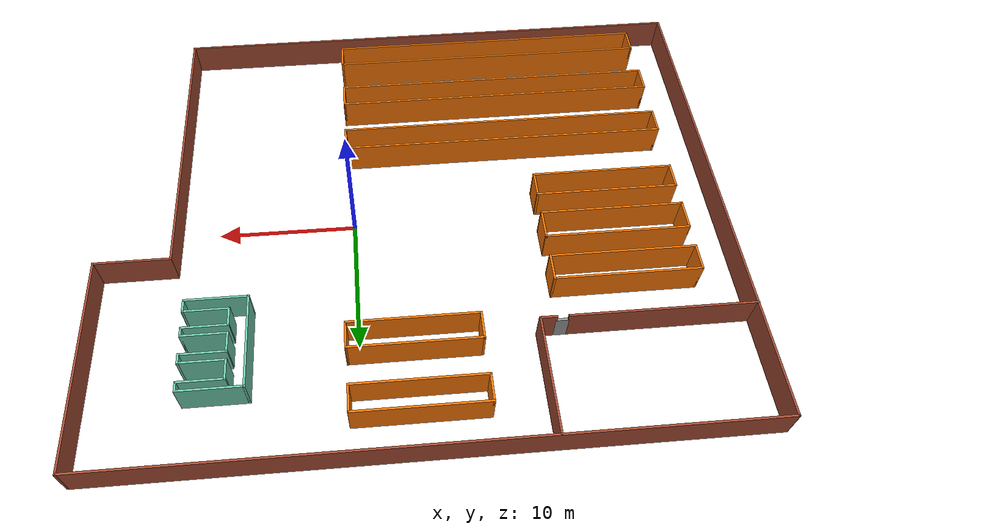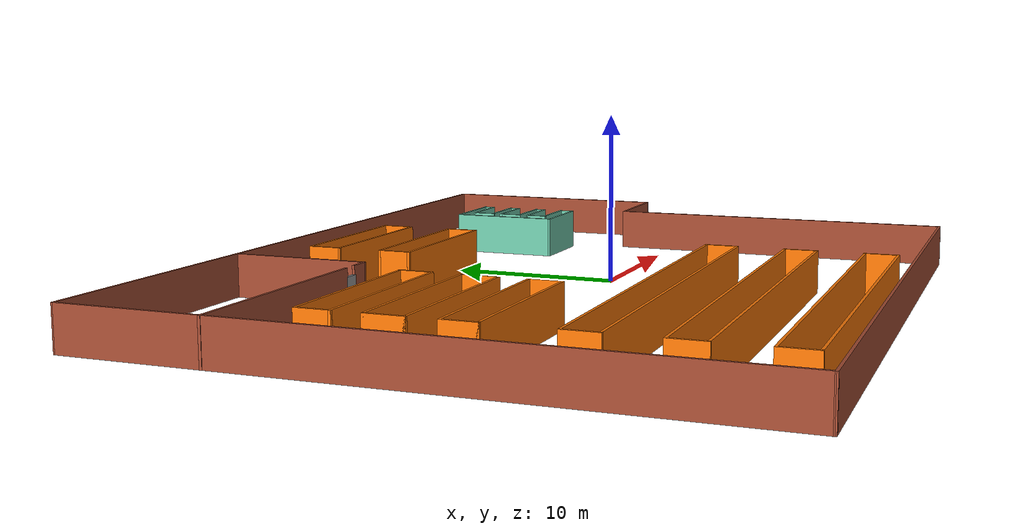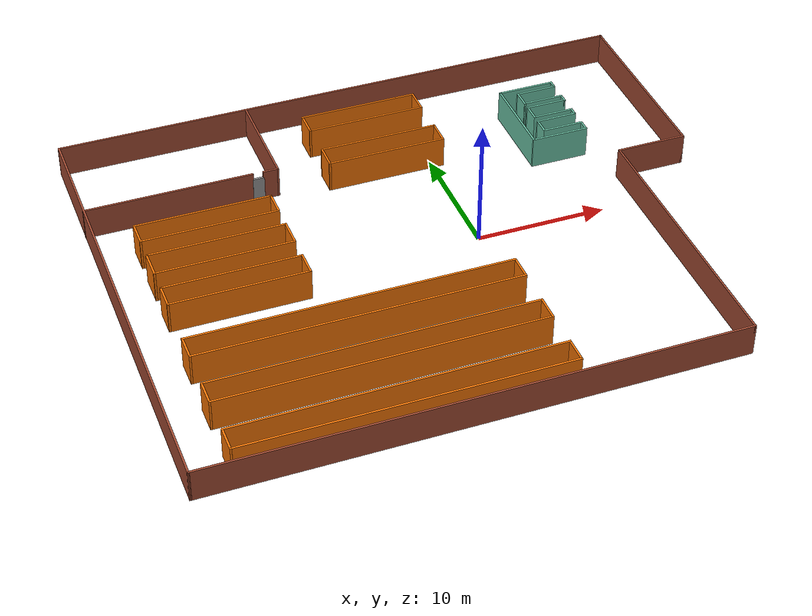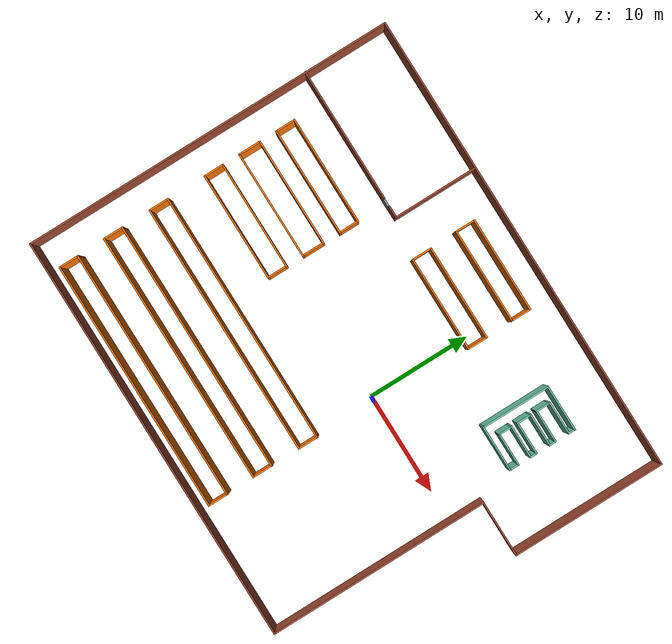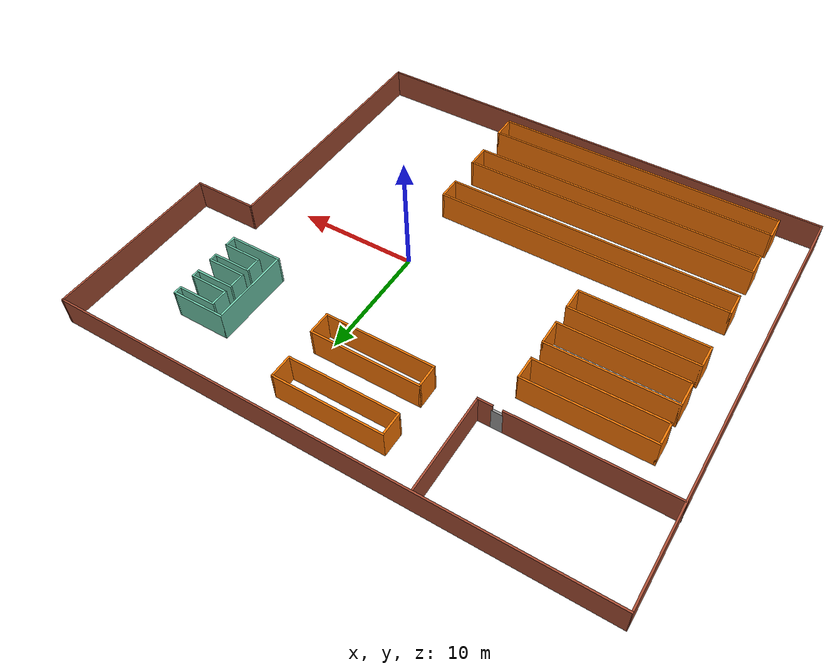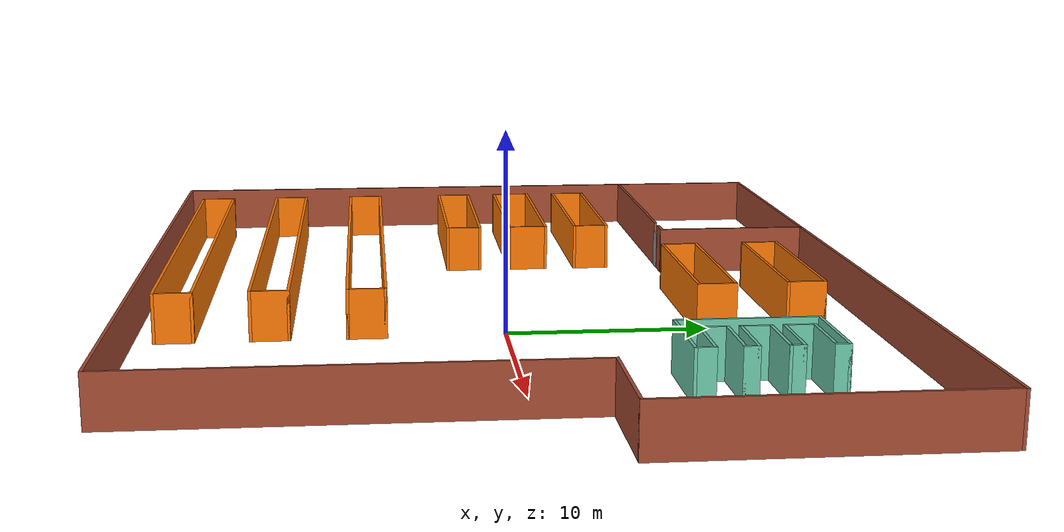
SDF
<?xml version='1.0'?>
<sdf version='1.6'>
  <model name='si_amr_factory'>
    <pose frame=''>-4.44254 0.10355 0 0 -0 0</pose>
    <link name='Door_0'>
      <collision name='Door_0_Collision'>
        <geometry>
          <box>
            <size>0.9 0.17 2</size>
          </box>
        </geometry>
        <pose frame=''>0 0 1 0 -0 0</pose>
      </collision>
      <visual name='Door_0_Visual'>
        <pose frame=''>0 0 1 0 -0 0</pose>
        <geometry>
          <box>
            <size>0.9 0.17 2</size>
          </box>
        </geometry>
        <material>
          <script>
            <uri>file://media/materials/scripts/gazebo.material</uri>
            <name>Gazebo/Grey</name>
          </script>
        </material>
      </visual>
      <pose frame=''>-9.24755 9.98097 0 0 -0 0</pose>
    </link>
    <link name='Wall_0'>
      <collision name='Wall_0_Collision'>
        <geometry>
          <box>
            <size>40 0.15 2.5</size>
          </box>
        </geometry>
        <pose frame=''>0 0 1.25 0 -0 0</pose>
      </collision>
      <visual name='Wall_0_Visual'>
        <pose frame=''>0 0 1.25 0 -0 0</pose>
        <geometry>
          <box>
            <size>40 0.15 2.5</size>
          </box>
        </geometry>
        <material>
          <script>
            <uri>file://media/materials/scripts/gazebo.material</uri>
            <name>Gazebo/Bricks</name>
          </script>
          <ambient>1 1 1 1</ambient>
        </material>
        <meta>
          <layer>0</layer>
        </meta>
      </visual>
      <pose frame=''>-2.6749 -18.1 0 0 -0 0</pose>
    </link>
    <link name='Wall_1'>
      <collision name='Wall_1_Collision'>
        <geometry>
          <box>
            <size>21.5 0.15 2.5</size>
          </box>
        </geometry>
        <pose frame=''>0 0 1.25 0 -0 0</pose>
      </collision>
      <visual name='Wall_1_Visual'>
        <pose frame=''>0 0 1.25 0 -0 0</pose>
        <geometry>
          <box>
            <size>21.5 0.15 2.5</size>
          </box>
        </geometry>
        <material>
          <script>
            <uri>file://media/materials/scripts/gazebo.material</uri>
            <name>Gazebo/Bricks</name>
          </script>
          <ambient>1 1 1 1</ambient>
        </material>
        <meta>
          <layer>0</layer>
        </meta>
      </visual>
      <pose frame=''>17.2501 -7.425 0 0 -0 1.5708</pose>
    </link>
    <link name='Wall_10'>
      <collision name='Wall_10_Collision'>
        <geometry>
          <box>
            <size>2 0.15 2.5</size>
          </box>
        </geometry>
        <pose frame=''>0 0 1.25 0 -0 0</pose>
      </collision>
      <visual name='Wall_10_Visual'>
        <pose frame=''>0 0 1.25 0 -0 0</pose>
        <geometry>
          <box>
            <size>2 0.15 2.5</size>
          </box>
        </geometry>
        <material>
          <script>
            <uri>file://media/materials/scripts/gazebo.material</uri>
            <name>Gazebo/Grey</name>
          </script>
          <ambient>0.996078 0.47451 0.0196078 1</ambient>
        </material>
        <meta>
          <layer>0</layer>
        </meta>
      </visual>
      <pose frame=''>-19.5227 -16.0937 0 0 -0 1.5708</pose>
    </link>
    <link name='Wall_12'>
      <collision name='Wall_12_Collision'>
        <geometry>
          <box>
            <size>2 0.15 2.5</size>
          </box>
        </geometry>
        <pose frame=''>0 0 1.25 0 -0 0</pose>
      </collision>
      <visual name='Wall_12_Visual'>
        <pose frame=''>0 0 1.25 0 -0 0</pose>
        <geometry>
          <box>
            <size>2 0.15 2.5</size>
          </box>
        </geometry>
        <material>
          <script>
            <uri>file://media/materials/scripts/gazebo.material</uri>
            <name>Gazebo/Grey</name>
          </script>
          <ambient>0.996078 0.47451 0.0196078 1</ambient>
        </material>
        <meta>
          <layer>0</layer>
        </meta>
      </visual>
      <pose frame=''>-19.575 -11.5221 0 0 -0 1.5708</pose>
    </link>
    <link name='Wall_13'>
      <collision name='Wall_13_Collision'>
        <geometry>
          <box>
            <size>24.5 0.15 2.5</size>
          </box>
        </geometry>
        <pose frame=''>0 0 1.25 0 -0 0</pose>
      </collision>
      <visual name='Wall_13_Visual'>
        <pose frame=''>0 0 1.25 0 -0 0</pose>
        <geometry>
          <box>
            <size>24.5 0.15 2.5</size>
          </box>
        </geometry>
        <material>
          <script>
            <uri>file://media/materials/scripts/gazebo.material</uri>
            <name>Gazebo/Grey</name>
          </script>
          <ambient>0.996078 0.47451 0.0196078 1</ambient>
        </material>
        <meta>
          <layer>0</layer>
        </meta>
      </visual>
      <pose frame=''>-7.39999 -10.5971 0 0 -0 0</pose>
    </link>
    <link name='Wall_14'>
      <collision name='Wall_14_Collision'>
        <geometry>
          <box>
            <size>2 0.15 2.5</size>
          </box>
        </geometry>
        <pose frame=''>0 0 1.25 0 -0 0</pose>
      </collision>
      <visual name='Wall_14_Visual'>
        <pose frame=''>0 0 1.25 0 -0 0</pose>
        <geometry>
          <box>
            <size>2 0.15 2.5</size>
          </box>
        </geometry>
        <material>
          <script>
            <uri>file://media/materials/scripts/gazebo.material</uri>
            <name>Gazebo/Grey</name>
          </script>
          <ambient>0.996078 0.47451 0.0196078 1</ambient>
        </material>
        <meta>
          <layer>0</layer>
        </meta>
      </visual>
      <pose frame=''>4.77501 -11.5221 0 0 -0 -1.5708</pose>
    </link>
    <link name='Wall_15'>
      <collision name='Wall_15_Collision'>
        <geometry>
          <box>
            <size>24.5 0.15 2.5</size>
          </box>
        </geometry>
        <pose frame=''>0 0 1.25 0 -0 0</pose>
      </collision>
      <visual name='Wall_15_Visual'>
        <pose frame=''>0 0 1.25 0 -0 0</pose>
        <geometry>
          <box>
            <size>24.5 0.15 2.5</size>
          </box>
        </geometry>
        <material>
          <script>
            <uri>file://media/materials/scripts/gazebo.material</uri>
            <name>Gazebo/Grey</name>
          </script>
          <ambient>0.996078 0.47451 0.0196078 1</ambient>
        </material>
        <meta>
          <layer>0</layer>
        </meta>
      </visual>
      <pose frame=''>-7.39999 -12.4471 0 0 -0 3.14159</pose>
    </link>
    <link name='Wall_17'>
      <collision name='Wall_17_Collision'>
        <geometry>
          <box>
            <size>2 0.15 2.5</size>
          </box>
        </geometry>
        <pose frame=''>0 0 1.25 0 -0 0</pose>
      </collision>
      <visual name='Wall_17_Visual'>
        <pose frame=''>0 0 1.25 0 -0 0</pose>
        <geometry>
          <box>
            <size>2 0.15 2.5</size>
          </box>
        </geometry>
        <material>
          <script>
            <uri>file://media/materials/scripts/gazebo.material</uri>
            <name>Gazebo/Grey</name>
          </script>
          <ambient>0.996078 0.47451 0.0196078 1</ambient>
        </material>
        <meta>
          <layer>0</layer>
        </meta>
      </visual>
      <pose frame=''>-19.575 -6.86388 0 0 -0 1.5708</pose>
    </link>
    <link name='Wall_18'>
      <collision name='Wall_18_Collision'>
        <geometry>
          <box>
            <size>24.5 0.15 2.5</size>
          </box>
        </geometry>
        <pose frame=''>0 0 1.25 0 -0 0</pose>
      </collision>
      <visual name='Wall_18_Visual'>
        <pose frame=''>0 0 1.25 0 -0 0</pose>
        <geometry>
          <box>
            <size>24.5 0.15 2.5</size>
          </box>
        </geometry>
        <material>
          <script>
            <uri>file://media/materials/scripts/gazebo.material</uri>
            <name>Gazebo/Grey</name>
          </script>
          <ambient>0.996078 0.47451 0.0196078 1</ambient>
        </material>
        <meta>
          <layer>0</layer>
        </meta>
      </visual>
      <pose frame=''>-7.39999 -5.93888 0 0 -0 0</pose>
    </link>
    <link name='Wall_19'>
      <collision name='Wall_19_Collision'>
        <geometry>
          <box>
            <size>2 0.15 2.5</size>
          </box>
        </geometry>
        <pose frame=''>0 0 1.25 0 -0 0</pose>
      </collision>
      <visual name='Wall_19_Visual'>
        <pose frame=''>0 0 1.25 0 -0 0</pose>
        <geometry>
          <box>
            <size>2 0.15 2.5</size>
          </box>
        </geometry>
        <material>
          <script>
            <uri>file://media/materials/scripts/gazebo.material</uri>
            <name>Gazebo/Grey</name>
          </script>
          <ambient>0.996078 0.47451 0.0196078 1</ambient>
        </material>
        <meta>
          <layer>0</layer>
        </meta>
      </visual>
      <pose frame=''>4.77501 -6.86388 0 0 -0 -1.5708</pose>
    </link>
    <link name='Wall_2'>
      <collision name='Wall_2_Collision'>
        <geometry>
          <box>
            <size>5.5 0.15 2.5</size>
          </box>
        </geometry>
        <pose frame=''>0 0 1.25 0 -0 0</pose>
      </collision>
      <visual name='Wall_2_Visual'>
        <pose frame=''>0 0 1.25 0 -0 0</pose>
        <geometry>
          <box>
            <size>5.5 0.15 2.5</size>
          </box>
        </geometry>
        <material>
          <script>
            <uri>file://media/materials/scripts/gazebo.material</uri>
            <name>Gazebo/Bricks</name>
          </script>
          <ambient>1 1 1 1</ambient>
        </material>
        <meta>
          <layer>0</layer>
        </meta>
      </visual>
      <pose frame=''>19.9251 3.25 0 0 -0 0</pose>
    </link>
    <link name='Wall_20'>
      <collision name='Wall_20_Collision'>
        <geometry>
          <box>
            <size>24.5 0.15 2.5</size>
          </box>
        </geometry>
        <pose frame=''>0 0 1.25 0 -0 0</pose>
      </collision>
      <visual name='Wall_20_Visual'>
        <pose frame=''>0 0 1.25 0 -0 0</pose>
        <geometry>
          <box>
            <size>24.5 0.15 2.5</size>
          </box>
        </geometry>
        <material>
          <script>
            <uri>file://media/materials/scripts/gazebo.material</uri>
            <name>Gazebo/Grey</name>
          </script>
          <ambient>0.996078 0.47451 0.0196078 1</ambient>
        </material>
        <meta>
          <layer>0</layer>
        </meta>
      </visual>
      <pose frame=''>-7.39999 -7.78888 0 0 -0 3.14159</pose>
    </link>
    <link name='Wall_28'>
      <collision name='Wall_28_Collision'>
        <geometry>
          <box>
            <size>10.5 0.15 2.5</size>
          </box>
        </geometry>
        <pose frame=''>0 0 1.25 0 -0 0</pose>
      </collision>
      <visual name='Wall_28_Visual'>
        <pose frame=''>0 0 1.25 0 -0 0</pose>
        <geometry>
          <box>
            <size>10.5 0.15 2.5</size>
          </box>
        </geometry>
        <material>
          <script>
            <uri>file://media/materials/scripts/gazebo.material</uri>
            <name>Gazebo/Grey</name>
          </script>
          <ambient>0.996078 0.47451 0.0196078 1</ambient>
        </material>
        <meta>
          <layer>0</layer>
        </meta>
      </visual>
      <pose frame=''>-14.3745 -0.32266 0 0 -0 0</pose>
    </link>
    <link name='Wall_29'>
      <collision name='Wall_29_Collision'>
        <geometry>
          <box>
            <size>2 0.15 2.5</size>
          </box>
        </geometry>
        <pose frame=''>0 0 1.25 0 -0 0</pose>
      </collision>
      <visual name='Wall_29_Visual'>
        <pose frame=''>0 0 1.25 0 -0 0</pose>
        <geometry>
          <box>
            <size>2 0.15 2.5</size>
          </box>
        </geometry>
        <material>
          <script>
            <uri>file://media/materials/scripts/gazebo.material</uri>
            <name>Gazebo/Grey</name>
          </script>
          <ambient>0.996078 0.47451 0.0196078 1</ambient>
        </material>
        <meta>
          <layer>0</layer>
        </meta>
      </visual>
      <pose frame=''>-9.19952 -1.24766 0 0 -0 -1.5708</pose>
    </link>
    <link name='Wall_3'>
      <collision name='Wall_3_Collision'>
        <geometry>
          <box>
            <size>15 0.15 2.5</size>
          </box>
        </geometry>
        <pose frame=''>0 0 1.25 0 -0 0</pose>
      </collision>
      <visual name='Wall_3_Visual'>
        <pose frame=''>0 0 1.25 0 -0 0</pose>
        <geometry>
          <box>
            <size>15 0.15 2.5</size>
          </box>
        </geometry>
        <material>
          <script>
            <uri>file://media/materials/scripts/gazebo.material</uri>
            <name>Gazebo/Bricks</name>
          </script>
          <ambient>1 1 1 1</ambient>
        </material>
        <meta>
          <layer>0</layer>
        </meta>
      </visual>
      <pose frame=''>22.6001 10.675 0 0 -0 1.5708</pose>
    </link>
    <link name='Wall_30'>
      <collision name='Wall_30_Collision'>
        <geometry>
          <box>
            <size>10.5 0.15 2.5</size>
          </box>
        </geometry>
        <pose frame=''>0 0 1.25 0 -0 0</pose>
      </collision>
      <visual name='Wall_30_Visual'>
        <pose frame=''>0 0 1.25 0 -0 0</pose>
        <geometry>
          <box>
            <size>10.5 0.15 2.5</size>
          </box>
        </geometry>
        <material>
          <script>
            <uri>file://media/materials/scripts/gazebo.material</uri>
            <name>Gazebo/Grey</name>
          </script>
          <ambient>0.996078 0.47451 0.0196078 1</ambient>
        </material>
        <meta>
          <layer>0</layer>
        </meta>
      </visual>
      <pose frame=''>-14.3745 -2.17266 0 0 -0 3.14159</pose>
    </link>
    <link name='Wall_31'>
      <collision name='Wall_31_Collision'>
        <geometry>
          <box>
            <size>2 0.15 2.5</size>
          </box>
        </geometry>
        <pose frame=''>0 0 1.25 0 -0 0</pose>
      </collision>
      <visual name='Wall_31_Visual'>
        <pose frame=''>0 0 1.25 0 -0 0</pose>
        <geometry>
          <box>
            <size>2 0.15 2.5</size>
          </box>
        </geometry>
        <material>
          <script>
            <uri>file://media/materials/scripts/gazebo.material</uri>
            <name>Gazebo/Grey</name>
          </script>
          <ambient>0.996078 0.47451 0.0196078 1</ambient>
        </material>
        <meta>
          <layer>0</layer>
        </meta>
      </visual>
      <pose frame=''>-19.5495 -1.24766 0 0 -0 1.5708</pose>
    </link>
    <link name='Wall_33'>
      <collision name='Wall_33_Collision'>
        <geometry>
          <box>
            <size>10.5 0.15 2.5</size>
          </box>
        </geometry>
        <pose frame=''>0 0 1.25 0 -0 0</pose>
      </collision>
      <visual name='Wall_33_Visual'>
        <pose frame=''>0 0 1.25 0 -0 0</pose>
        <geometry>
          <box>
            <size>10.5 0.15 2.5</size>
          </box>
        </geometry>
        <material>
          <script>
            <uri>file://media/materials/scripts/gazebo.material</uri>
            <name>Gazebo/Grey</name>
          </script>
          <ambient>0.996078 0.47451 0.0196078 1</ambient>
        </material>
        <meta>
          <layer>0</layer>
        </meta>
      </visual>
      <pose frame=''>-14.3745 3.46933 0 0 -0 0</pose>
    </link>
    <link name='Wall_34'>
      <collision name='Wall_34_Collision'>
        <geometry>
          <box>
            <size>2.25 0.15 2.5</size>
          </box>
        </geometry>
        <pose frame=''>0 0 1.25 0 -0 0</pose>
      </collision>
      <visual name='Wall_34_Visual'>
        <pose frame=''>0 0 1.25 0 -0 0</pose>
        <geometry>
          <box>
            <size>2.25 0.15 2.5</size>
          </box>
        </geometry>
        <material>
          <script>
            <uri>file://media/materials/scripts/gazebo.material</uri>
            <name>Gazebo/Grey</name>
          </script>
          <ambient>0.996078 0.47451 0.0196078 1</ambient>
        </material>
        <meta>
          <layer>0</layer>
        </meta>
      </visual>
      <pose frame=''>-9.19952 2.41933 0 0 -0 -1.5708</pose>
    </link>
    <link name='Wall_35'>
      <collision name='Wall_35_Collision'>
        <geometry>
          <box>
            <size>10.5 0.15 2.5</size>
          </box>
        </geometry>
        <pose frame=''>0 0 1.25 0 -0 0</pose>
      </collision>
      <visual name='Wall_35_Visual'>
        <pose frame=''>0 0 1.25 0 -0 0</pose>
        <geometry>
          <box>
            <size>10.5 0.15 2.5</size>
          </box>
        </geometry>
        <material>
          <script>
            <uri>file://media/materials/scripts/gazebo.material</uri>
            <name>Gazebo/Grey</name>
          </script>
          <ambient>0.996078 0.47451 0.0196078 1</ambient>
        </material>
        <meta>
          <layer>0</layer>
        </meta>
      </visual>
      <pose frame=''>-14.3745 1.36933 0 0 -0 3.14159</pose>
    </link>
    <link name='Wall_36'>
      <collision name='Wall_36_Collision'>
        <geometry>
          <box>
            <size>2.25 0.15 2.5</size>
          </box>
        </geometry>
        <pose frame=''>0 0 1.25 0 -0 0</pose>
      </collision>
      <visual name='Wall_36_Visual'>
        <pose frame=''>0 0 1.25 0 -0 0</pose>
        <geometry>
          <box>
            <size>2.25 0.15 2.5</size>
          </box>
        </geometry>
        <material>
          <script>
            <uri>file://media/materials/scripts/gazebo.material</uri>
            <name>Gazebo/Grey</name>
          </script>
          <ambient>0.996078 0.47451 0.0196078 1</ambient>
        </material>
        <meta>
          <layer>0</layer>
        </meta>
      </visual>
      <pose frame=''>-19.5495 2.41933 0 0 -0 1.5708</pose>
    </link>
    <link name='Wall_38'>
      <collision name='Wall_38_Collision'>
        <geometry>
          <box>
            <size>2 0.15 2.5</size>
          </box>
        </geometry>
        <pose frame=''>0 0 1.25 0 -0 0</pose>
      </collision>
      <visual name='Wall_38_Visual'>
        <pose frame=''>0 0 1.25 0 -0 0</pose>
        <geometry>
          <box>
            <size>2 0.15 2.5</size>
          </box>
        </geometry>
        <material>
          <script>
            <uri>file://media/materials/scripts/gazebo.material</uri>
            <name>Gazebo/Grey</name>
          </script>
          <ambient>0.996078 0.47451 0.0196078 1</ambient>
        </material>
        <meta>
          <layer>0</layer>
        </meta>
      </visual>
      <pose frame=''>-19.5495 6.07966 0 0 -0 1.5708</pose>
    </link>
    <link name='Wall_39'>
      <collision name='Wall_39_Collision'>
        <geometry>
          <box>
            <size>10.5 0.15 2.5</size>
          </box>
        </geometry>
        <pose frame=''>0 0 1.25 0 -0 0</pose>
      </collision>
      <visual name='Wall_39_Visual'>
        <pose frame=''>0 0 1.25 0 -0 0</pose>
        <geometry>
          <box>
            <size>10.5 0.15 2.5</size>
          </box>
        </geometry>
        <material>
          <script>
            <uri>file://media/materials/scripts/gazebo.material</uri>
            <name>Gazebo/Grey</name>
          </script>
          <ambient>0.996078 0.47451 0.0196078 1</ambient>
        </material>
        <meta>
          <layer>0</layer>
        </meta>
      </visual>
      <pose frame=''>-14.3745 7.00466 0 0 -0 0</pose>
    </link>
    <link name='Wall_4'>
      <collision name='Wall_4_Collision'>
        <geometry>
          <box>
            <size>45.25 0.15 2.5</size>
          </box>
        </geometry>
        <pose frame=''>0 0 1.25 0 -0 0</pose>
      </collision>
      <visual name='Wall_4_Visual'>
        <pose frame=''>0 0 1.25 0 -0 0</pose>
        <geometry>
          <box>
            <size>45.25 0.15 2.5</size>
          </box>
        </geometry>
        <material>
          <script>
            <uri>file://media/materials/scripts/gazebo.material</uri>
            <name>Gazebo/Bricks</name>
          </script>
          <ambient>1 1 1 1</ambient>
        </material>
        <meta>
          <layer>0</layer>
        </meta>
      </visual>
      <pose frame=''>0.050104 18.1 0 0 -0 3.14159</pose>
    </link>
    <link name='Wall_40'>
      <collision name='Wall_40_Collision'>
        <geometry>
          <box>
            <size>2 0.15 2.5</size>
          </box>
        </geometry>
        <pose frame=''>0 0 1.25 0 -0 0</pose>
      </collision>
      <visual name='Wall_40_Visual'>
        <pose frame=''>0 0 1.25 0 -0 0</pose>
        <geometry>
          <box>
            <size>2 0.15 2.5</size>
          </box>
        </geometry>
        <material>
          <script>
            <uri>file://media/materials/scripts/gazebo.material</uri>
            <name>Gazebo/Grey</name>
          </script>
          <ambient>0.996078 0.47451 0.0196078 1</ambient>
        </material>
        <meta>
          <layer>0</layer>
        </meta>
      </visual>
      <pose frame=''>-9.19952 6.07966 0 0 -0 -1.5708</pose>
    </link>
    <link name='Wall_41'>
      <collision name='Wall_41_Collision'>
        <geometry>
          <box>
            <size>10.5 0.15 2.5</size>
          </box>
        </geometry>
        <pose frame=''>0 0 1.25 0 -0 0</pose>
      </collision>
      <visual name='Wall_41_Visual'>
        <pose frame=''>0 0 1.25 0 -0 0</pose>
        <geometry>
          <box>
            <size>10.5 0.15 2.5</size>
          </box>
        </geometry>
        <material>
          <script>
            <uri>file://media/materials/scripts/gazebo.material</uri>
            <name>Gazebo/Grey</name>
          </script>
          <ambient>0.996078 0.47451 0.0196078 1</ambient>
        </material>
        <meta>
          <layer>0</layer>
        </meta>
      </visual>
      <pose frame=''>-14.3745 5.15466 0 0 -0 3.14159</pose>
    </link>
    <link name='Wall_46'>
      <collision name='Wall_46_Collision'>
        <geometry>
          <box>
            <size>9.25 0.15 2.5</size>
          </box>
        </geometry>
        <pose frame=''>0 0 1.25 0 -0 0</pose>
      </collision>
      <visual name='Wall_46_Visual'>
        <pose frame=''>0 0 1.25 0 -0 0</pose>
        <geometry>
          <box>
            <size>9.25 0.15 2.5</size>
          </box>
        </geometry>
        <material>
          <script>
            <uri>file://media/materials/scripts/gazebo.material</uri>
            <name>Gazebo/Grey</name>
          </script>
          <ambient>0.996078 0.47451 0.0196078 1</ambient>
        </material>
        <meta>
          <layer>0</layer>
        </meta>
      </visual>
      <pose frame=''>0.710155 11.1135 0 0 -0 0</pose>
    </link>
    <link name='Wall_47'>
      <collision name='Wall_47_Collision'>
        <geometry>
          <box>
            <size>2 0.15 2.5</size>
          </box>
        </geometry>
        <pose frame=''>0 0 1.25 0 -0 0</pose>
      </collision>
      <visual name='Wall_47_Visual'>
        <pose frame=''>0 0 1.25 0 -0 0</pose>
        <geometry>
          <box>
            <size>2 0.15 2.5</size>
          </box>
        </geometry>
        <material>
          <script>
            <uri>file://media/materials/scripts/gazebo.material</uri>
            <name>Gazebo/Grey</name>
          </script>
          <ambient>0.996078 0.47451 0.0196078 1</ambient>
        </material>
        <meta>
          <layer>0</layer>
        </meta>
      </visual>
      <pose frame=''>5.26016 10.1885 0 0 -0 -1.5708</pose>
    </link>
    <link name='Wall_48'>
      <collision name='Wall_48_Collision'>
        <geometry>
          <box>
            <size>9.25 0.15 2.5</size>
          </box>
        </geometry>
        <pose frame=''>0 0 1.25 0 -0 0</pose>
      </collision>
      <visual name='Wall_48_Visual'>
        <pose frame=''>0 0 1.25 0 -0 0</pose>
        <geometry>
          <box>
            <size>9.25 0.15 2.5</size>
          </box>
        </geometry>
        <material>
          <script>
            <uri>file://media/materials/scripts/gazebo.material</uri>
            <name>Gazebo/Grey</name>
          </script>
          <ambient>0.996078 0.47451 0.0196078 1</ambient>
        </material>
        <meta>
          <layer>0</layer>
        </meta>
      </visual>
      <pose frame=''>0.710155 9.2635 0 0 -0 3.14159</pose>
    </link>
    <link name='Wall_49'>
      <collision name='Wall_49_Collision'>
        <geometry>
          <box>
            <size>2 0.15 2.5</size>
          </box>
        </geometry>
        <pose frame=''>0 0 1.25 0 -0 0</pose>
      </collision>
      <visual name='Wall_49_Visual'>
        <pose frame=''>0 0 1.25 0 -0 0</pose>
        <geometry>
          <box>
            <size>2 0.15 2.5</size>
          </box>
        </geometry>
        <material>
          <script>
            <uri>file://media/materials/scripts/gazebo.material</uri>
            <name>Gazebo/Grey</name>
          </script>
          <ambient>0.996078 0.47451 0.0196078 1</ambient>
        </material>
        <meta>
          <layer>0</layer>
        </meta>
      </visual>
      <pose frame=''>-3.83984 10.1885 0 0 -0 1.5708</pose>
    </link>
    <link name='Wall_5'>
      <collision name='Wall_5_Collision'>
        <geometry>
          <box>
            <size>36.3501 0.15 2.5</size>
          </box>
        </geometry>
        <pose frame=''>0 0 1.25 0 -0 0</pose>
      </collision>
      <visual name='Wall_5_Visual'>
        <pose frame=''>0 0 1.25 0 -0 0</pose>
        <geometry>
          <box>
            <size>36.3501 0.15 2.5</size>
          </box>
        </geometry>
        <material>
          <script>
            <uri>file://media/materials/scripts/gazebo.material</uri>
            <name>Gazebo/Bricks</name>
          </script>
          <ambient>1 1 1 1</ambient>
        </material>
        <meta>
          <layer>0</layer>
        </meta>
      </visual>
      <pose frame=''>-22.5499 -0 0 0 -0 -1.57356</pose>
    </link>
    <link name='Wall_51'>
      <collision name='Wall_51_Collision'>
        <geometry>
          <box>
            <size>1.25 0.15 2.5</size>
          </box>
        </geometry>
        <pose frame=''>0 0 1.25 0 -0 0</pose>
      </collision>
      <visual name='Wall_51_Visual'>
        <pose frame=''>0 0 1.25 0 -0 0</pose>
        <geometry>
          <box>
            <size>1.25 0.15 2.5</size>
          </box>
        </geometry>
        <material>
          <script>
            <uri>file://media/materials/scripts/gazebo.material</uri>
            <name>Gazebo/Bricks</name>
          </script>
          <ambient>1 1 1 1</ambient>
        </material>
        <meta>
          <layer>0</layer>
        </meta>
      </visual>
      <pose frame=''>-8.26936 9.98834 0 0 -0 0</pose>
    </link>
    <link name='Wall_52'>
      <collision name='Wall_52_Collision'>
        <geometry>
          <box>
            <size>8.25 0.15 2.5</size>
          </box>
        </geometry>
        <pose frame=''>0 0 1.25 0 -0 0</pose>
      </collision>
      <visual name='Wall_52_Visual'>
        <pose frame=''>0 0 1.25 0 -0 0</pose>
        <geometry>
          <box>
            <size>8.25 0.15 2.5</size>
          </box>
        </geometry>
        <material>
          <script>
            <uri>file://media/materials/scripts/gazebo.material</uri>
            <name>Gazebo/Bricks</name>
          </script>
          <ambient>1 1 1 1</ambient>
        </material>
        <meta>
          <layer>0</layer>
        </meta>
      </visual>
      <pose frame=''>-7.71936 14.0383 0 0 -0 1.5708</pose>
    </link>
    <link name='Wall_56'>
      <collision name='Wall_56_Collision'>
        <geometry>
          <box>
            <size>13 0.15 2.5</size>
          </box>
        </geometry>
        <pose frame=''>0 0 1.25 0 -0 0</pose>
      </collision>
      <visual name='Wall_56_Visual'>
        <pose frame=''>0 0 1.25 0 -0 0</pose>
        <geometry>
          <box>
            <size>13 0.15 2.5</size>
          </box>
        </geometry>
        <material>
          <script>
            <uri>file://media/materials/scripts/gazebo.material</uri>
            <name>Gazebo/Bricks</name>
          </script>
          <ambient>1 1 1 1</ambient>
        </material>
        <meta>
          <layer>0</layer>
        </meta>
      </visual>
      <pose frame=''>-16.1225 9.98901 0 0 -0 3.14159</pose>
    </link>
    <link name='Wall_58'>
      <collision name='Wall_58_Collision'>
        <geometry>
          <box>
            <size>9.25 0.15 2.5</size>
          </box>
        </geometry>
        <pose frame=''>0 0 1.25 0 -0 0</pose>
      </collision>
      <visual name='Wall_58_Visual'>
        <pose frame=''>0 0 1.25 0 -0 0</pose>
        <geometry>
          <box>
            <size>9.25 0.15 2.5</size>
          </box>
        </geometry>
        <material>
          <script>
            <uri>file://media/materials/scripts/gazebo.material</uri>
            <name>Gazebo/Grey</name>
          </script>
          <ambient>0.996078 0.47451 0.0196078 1</ambient>
        </material>
        <meta>
          <layer>0</layer>
        </meta>
      </visual>
      <pose frame=''>0.645453 15.5911 0 0 -0 0</pose>
    </link>
    <link name='Wall_59'>
      <collision name='Wall_59_Collision'>
        <geometry>
          <box>
            <size>2 0.15 2.5</size>
          </box>
        </geometry>
        <pose frame=''>0 0 1.25 0 -0 0</pose>
      </collision>
      <visual name='Wall_59_Visual'>
        <pose frame=''>0 0 1.25 0 -0 0</pose>
        <geometry>
          <box>
            <size>2 0.15 2.5</size>
          </box>
        </geometry>
        <material>
          <script>
            <uri>file://media/materials/scripts/gazebo.material</uri>
            <name>Gazebo/Grey</name>
          </script>
          <ambient>0.996078 0.47451 0.0196078 1</ambient>
        </material>
        <meta>
          <layer>0</layer>
        </meta>
      </visual>
      <pose frame=''>5.19545 14.6661 0 0 -0 -1.5708</pose>
    </link>
    <link name='Wall_60'>
      <collision name='Wall_60_Collision'>
        <geometry>
          <box>
            <size>9.25 0.15 2.5</size>
          </box>
        </geometry>
        <pose frame=''>0 0 1.25 0 -0 0</pose>
      </collision>
      <visual name='Wall_60_Visual'>
        <pose frame=''>0 0 1.25 0 -0 0</pose>
        <geometry>
          <box>
            <size>9.25 0.15 2.5</size>
          </box>
        </geometry>
        <material>
          <script>
            <uri>file://media/materials/scripts/gazebo.material</uri>
            <name>Gazebo/Grey</name>
          </script>
          <ambient>0.996078 0.47451 0.0196078 1</ambient>
        </material>
        <meta>
          <layer>0</layer>
        </meta>
      </visual>
      <pose frame=''>0.645453 13.7411 0 0 -0 3.14159</pose>
    </link>
    <link name='Wall_61'>
      <collision name='Wall_61_Collision'>
        <geometry>
          <box>
            <size>2 0.15 2.5</size>
          </box>
        </geometry>
        <pose frame=''>0 0 1.25 0 -0 0</pose>
      </collision>
      <visual name='Wall_61_Visual'>
        <pose frame=''>0 0 1.25 0 -0 0</pose>
        <geometry>
          <box>
            <size>2 0.15 2.5</size>
          </box>
        </geometry>
        <material>
          <script>
            <uri>file://media/materials/scripts/gazebo.material</uri>
            <name>Gazebo/Grey</name>
          </script>
          <ambient>0.996078 0.47451 0.0196078 1</ambient>
        </material>
        <meta>
          <layer>0</layer>
        </meta>
      </visual>
      <pose frame=''>-3.90455 14.6661 0 0 -0 1.5708</pose>
    </link>
    <link name='Wall_63'>
      <collision name='Wall_63_Collision'>
        <geometry>
          <box>
            <size>3.25 0.15 2.5</size>
          </box>
        </geometry>
        <pose frame=''>0 0 1.25 0 -0 0</pose>
      </collision>
      <visual name='Wall_63_Visual'>
        <pose frame=''>0 0 1.25 0 -0 0</pose>
        <geometry>
          <box>
            <size>3.25 0.15 2.5</size>
          </box>
        </geometry>
        <material>
          <script>
            <uri>file://media/materials/scripts/gazebo.material</uri>
            <name>Gazebo/Grey</name>
          </script>
          <ambient>0.435294 0.796078 0.67451 1</ambient>
        </material>
        <meta>
          <layer>0</layer>
        </meta>
      </visual>
      <pose frame=''>14.518 7.57767 0 0 -0 0</pose>
    </link>
    <link name='Wall_64'>
      <collision name='Wall_64_Collision'>
        <geometry>
          <box>
            <size>1 0.15 2.5</size>
          </box>
        </geometry>
        <pose frame=''>0 0 1.25 0 -0 0</pose>
      </collision>
      <visual name='Wall_64_Visual'>
        <pose frame=''>0 0 1.25 0 -0 0</pose>
        <geometry>
          <box>
            <size>1 0.15 2.5</size>
          </box>
        </geometry>
        <material>
          <script>
            <uri>file://media/materials/scripts/gazebo.material</uri>
            <name>Gazebo/Grey</name>
          </script>
          <ambient>0.435294 0.796078 0.67451 1</ambient>
        </material>
        <meta>
          <layer>0</layer>
        </meta>
      </visual>
      <pose frame=''>16.068 7.15267 0 0 -0 -1.5708</pose>
    </link>
    <link name='Wall_67'>
      <collision name='Wall_67_Collision'>
        <geometry>
          <box>
            <size>4.5 0.15 2.5</size>
          </box>
        </geometry>
        <pose frame=''>0 0 1.25 0 -0 0</pose>
      </collision>
      <visual name='Wall_67_Visual'>
        <pose frame=''>0 0 1.25 0 -0 0</pose>
        <geometry>
          <box>
            <size>4.5 0.15 2.5</size>
          </box>
        </geometry>
        <material>
          <script>
            <uri>file://media/materials/scripts/gazebo.material</uri>
            <name>Gazebo/Grey</name>
          </script>
          <ambient>0.435294 0.796078 0.67451 1</ambient>
        </material>
        <meta>
          <layer>0</layer>
        </meta>
      </visual>
      <pose frame=''>13.893 6.72767 0 0 -0 3.14159</pose>
    </link>
    <link name='Wall_68'>
      <collision name='Wall_68_Collision'>
        <geometry>
          <box>
            <size>6.75 0.15 2.5</size>
          </box>
        </geometry>
        <pose frame=''>0 0 1.25 0 -0 0</pose>
      </collision>
      <visual name='Wall_68_Visual'>
        <pose frame=''>0 0 1.25 0 -0 0</pose>
        <geometry>
          <box>
            <size>6.75 0.15 2.5</size>
          </box>
        </geometry>
        <material>
          <script>
            <uri>file://media/materials/scripts/gazebo.material</uri>
            <name>Gazebo/Grey</name>
          </script>
          <ambient>0.435294 0.796078 0.67451 1</ambient>
        </material>
        <meta>
          <layer>0</layer>
        </meta>
      </visual>
      <pose frame=''>11.718 10.0277 0 0 -0 1.5708</pose>
    </link>
    <link name='Wall_69'>
      <collision name='Wall_69_Collision'>
        <geometry>
          <box>
            <size>4.5 0.15 2.5</size>
          </box>
        </geometry>
        <pose frame=''>0 0 1.25 0 -0 0</pose>
      </collision>
      <visual name='Wall_69_Visual'>
        <pose frame=''>0 0 1.25 0 -0 0</pose>
        <geometry>
          <box>
            <size>4.5 0.15 2.5</size>
          </box>
        </geometry>
        <material>
          <script>
            <uri>file://media/materials/scripts/gazebo.material</uri>
            <name>Gazebo/Grey</name>
          </script>
          <ambient>0.435294 0.796078 0.67451 1</ambient>
        </material>
        <meta>
          <layer>0</layer>
        </meta>
      </visual>
      <pose frame=''>13.893 13.3277 0 0 -0 0</pose>
    </link>
    <link name='Wall_7'>
      <collision name='Wall_7_Collision'>
        <geometry>
          <box>
            <size>24.5 0.15 2.5</size>
          </box>
        </geometry>
        <pose frame=''>0 0 1.25 0 -0 0</pose>
      </collision>
      <visual name='Wall_7_Visual'>
        <pose frame=''>0 0 1.25 0 -0 0</pose>
        <geometry>
          <box>
            <size>24.5 0.15 2.5</size>
          </box>
        </geometry>
        <material>
          <script>
            <uri>file://media/materials/scripts/gazebo.material</uri>
            <name>Gazebo/Grey</name>
          </script>
          <ambient>0.996078 0.47451 0.0196078 1</ambient>
        </material>
        <meta>
          <layer>0</layer>
        </meta>
      </visual>
      <pose frame=''>-7.34765 -15.1687 0 0 -0 0</pose>
    </link>
    <link name='Wall_70'>
      <collision name='Wall_70_Collision'>
        <geometry>
          <box>
            <size>0.75 0.15 2.5</size>
          </box>
        </geometry>
        <pose frame=''>0 0 1.25 0 -0 0</pose>
      </collision>
      <visual name='Wall_70_Visual'>
        <pose frame=''>0 0 1.25 0 -0 0</pose>
        <geometry>
          <box>
            <size>0.75 0.15 2.5</size>
          </box>
        </geometry>
        <material>
          <script>
            <uri>file://media/materials/scripts/gazebo.material</uri>
            <name>Gazebo/Grey</name>
          </script>
          <ambient>0.435294 0.796078 0.67451 1</ambient>
        </material>
        <meta>
          <layer>0</layer>
        </meta>
      </visual>
      <pose frame=''>16.068 13.0277 0 0 -0 -1.5708</pose>
    </link>
    <link name='Wall_71'>
      <collision name='Wall_71_Collision'>
        <geometry>
          <box>
            <size>3.25 0.15 2.5</size>
          </box>
        </geometry>
        <pose frame=''>0 0 1.25 0 -0 0</pose>
      </collision>
      <visual name='Wall_71_Visual'>
        <pose frame=''>0 0 1.25 0 -0 0</pose>
        <geometry>
          <box>
            <size>3.25 0.15 2.5</size>
          </box>
        </geometry>
        <material>
          <script>
            <uri>file://media/materials/scripts/gazebo.material</uri>
            <name>Gazebo/Grey</name>
          </script>
          <ambient>0.435294 0.796078 0.67451 1</ambient>
        </material>
        <meta>
          <layer>0</layer>
        </meta>
      </visual>
      <pose frame=''>14.518 12.7277 0 0 -0 3.14159</pose>
    </link>
    <link name='Wall_72'>
      <collision name='Wall_72_Collision'>
        <geometry>
          <box>
            <size>1.5 0.15 2.5</size>
          </box>
        </geometry>
        <pose frame=''>0 0 1.25 0 -0 0</pose>
      </collision>
      <visual name='Wall_72_Visual'>
        <pose frame=''>0 0 1.25 0 -0 0</pose>
        <geometry>
          <box>
            <size>1.5 0.15 2.5</size>
          </box>
        </geometry>
        <material>
          <script>
            <uri>file://media/materials/scripts/gazebo.material</uri>
            <name>Gazebo/Grey</name>
          </script>
          <ambient>0.435294 0.796078 0.67451 1</ambient>
        </material>
        <meta>
          <layer>0</layer>
        </meta>
      </visual>
      <pose frame=''>12.968 12.0527 0 0 -0 -1.5708</pose>
    </link>
    <link name='Wall_73'>
      <collision name='Wall_73_Collision'>
        <geometry>
          <box>
            <size>3.25 0.15 2.5</size>
          </box>
        </geometry>
        <pose frame=''>0 0 1.25 0 -0 0</pose>
      </collision>
      <visual name='Wall_73_Visual'>
        <pose frame=''>0 0 1.25 0 -0 0</pose>
        <geometry>
          <box>
            <size>3.25 0.15 2.5</size>
          </box>
        </geometry>
        <material>
          <script>
            <uri>file://media/materials/scripts/gazebo.material</uri>
            <name>Gazebo/Grey</name>
          </script>
          <ambient>0.435294 0.796078 0.67451 1</ambient>
        </material>
        <meta>
          <layer>0</layer>
        </meta>
      </visual>
      <pose frame=''>14.518 11.3777 0 0 -0 0</pose>
    </link>
    <link name='Wall_74'>
      <collision name='Wall_74_Collision'>
        <geometry>
          <box>
            <size>0.75 0.15 2.5</size>
          </box>
        </geometry>
        <pose frame=''>0 0 1.25 0 -0 0</pose>
      </collision>
      <visual name='Wall_74_Visual'>
        <pose frame=''>0 0 1.25 0 -0 0</pose>
        <geometry>
          <box>
            <size>0.75 0.15 2.5</size>
          </box>
        </geometry>
        <material>
          <script>
            <uri>file://media/materials/scripts/gazebo.material</uri>
            <name>Gazebo/Grey</name>
          </script>
          <ambient>0.435294 0.796078 0.67451 1</ambient>
        </material>
        <meta>
          <layer>0</layer>
        </meta>
      </visual>
      <pose frame=''>16.068 11.0777 0 0 -0 -1.5708</pose>
    </link>
    <link name='Wall_75'>
      <collision name='Wall_75_Collision'>
        <geometry>
          <box>
            <size>3.25 0.15 2.5</size>
          </box>
        </geometry>
        <pose frame=''>0 0 1.25 0 -0 0</pose>
      </collision>
      <visual name='Wall_75_Visual'>
        <pose frame=''>0 0 1.25 0 -0 0</pose>
        <geometry>
          <box>
            <size>3.25 0.15 2.5</size>
          </box>
        </geometry>
        <material>
          <script>
            <uri>file://media/materials/scripts/gazebo.material</uri>
            <name>Gazebo/Grey</name>
          </script>
          <ambient>0.435294 0.796078 0.67451 1</ambient>
        </material>
        <meta>
          <layer>0</layer>
        </meta>
      </visual>
      <pose frame=''>14.518 10.7777 0 0 -0 3.14159</pose>
    </link>
    <link name='Wall_76'>
      <collision name='Wall_76_Collision'>
        <geometry>
          <box>
            <size>1.5 0.15 2.5</size>
          </box>
        </geometry>
        <pose frame=''>0 0 1.25 0 -0 0</pose>
      </collision>
      <visual name='Wall_76_Visual'>
        <pose frame=''>0 0 1.25 0 -0 0</pose>
        <geometry>
          <box>
            <size>1.5 0.15 2.5</size>
          </box>
        </geometry>
        <material>
          <script>
            <uri>file://media/materials/scripts/gazebo.material</uri>
            <name>Gazebo/Grey</name>
          </script>
          <ambient>0.435294 0.796078 0.67451 1</ambient>
        </material>
        <meta>
          <layer>0</layer>
        </meta>
      </visual>
      <pose frame=''>12.968 10.1027 0 0 -0 -1.5708</pose>
    </link>
    <link name='Wall_77'>
      <collision name='Wall_77_Collision'>
        <geometry>
          <box>
            <size>3.25 0.15 2.5</size>
          </box>
        </geometry>
        <pose frame=''>0 0 1.25 0 -0 0</pose>
      </collision>
      <visual name='Wall_77_Visual'>
        <pose frame=''>0 0 1.25 0 -0 0</pose>
        <geometry>
          <box>
            <size>3.25 0.15 2.5</size>
          </box>
        </geometry>
        <material>
          <script>
            <uri>file://media/materials/scripts/gazebo.material</uri>
            <name>Gazebo/Grey</name>
          </script>
          <ambient>0.435294 0.796078 0.67451 1</ambient>
        </material>
        <meta>
          <layer>0</layer>
        </meta>
      </visual>
      <pose frame=''>14.518 9.42767 0 0 -0 0</pose>
    </link>
    <link name='Wall_78'>
      <collision name='Wall_78_Collision'>
        <geometry>
          <box>
            <size>0.75 0.15 2.5</size>
          </box>
        </geometry>
        <pose frame=''>0 0 1.25 0 -0 0</pose>
      </collision>
      <visual name='Wall_78_Visual'>
        <pose frame=''>0 0 1.25 0 -0 0</pose>
        <geometry>
          <box>
            <size>0.75 0.15 2.5</size>
          </box>
        </geometry>
        <material>
          <script>
            <uri>file://media/materials/scripts/gazebo.material</uri>
            <name>Gazebo/Grey</name>
          </script>
          <ambient>0.435294 0.796078 0.67451 1</ambient>
        </material>
        <meta>
          <layer>0</layer>
        </meta>
      </visual>
      <pose frame=''>16.068 9.12767 0 0 -0 -1.5708</pose>
    </link>
    <link name='Wall_79'>
      <collision name='Wall_79_Collision'>
        <geometry>
          <box>
            <size>3.25 0.15 2.5</size>
          </box>
        </geometry>
        <pose frame=''>0 0 1.25 0 -0 0</pose>
      </collision>
      <visual name='Wall_79_Visual'>
        <pose frame=''>0 0 1.25 0 -0 0</pose>
        <geometry>
          <box>
            <size>3.25 0.15 2.5</size>
          </box>
        </geometry>
        <material>
          <script>
            <uri>file://media/materials/scripts/gazebo.material</uri>
            <name>Gazebo/Grey</name>
          </script>
          <ambient>0.435294 0.796078 0.67451 1</ambient>
        </material>
        <meta>
          <layer>0</layer>
        </meta>
      </visual>
      <pose frame=''>14.518 8.82767 0 0 -0 3.14159</pose>
    </link>
    <link name='Wall_8'>
      <collision name='Wall_8_Collision'>
        <geometry>
          <box>
            <size>2 0.15 2.5</size>
          </box>
        </geometry>
        <pose frame=''>0 0 1.25 0 -0 0</pose>
      </collision>
      <visual name='Wall_8_Visual'>
        <pose frame=''>0 0 1.25 0 -0 0</pose>
        <geometry>
          <box>
            <size>2 0.15 2.5</size>
          </box>
        </geometry>
        <material>
          <script>
            <uri>file://media/materials/scripts/gazebo.material</uri>
            <name>Gazebo/Grey</name>
          </script>
          <ambient>0.996078 0.47451 0.0196078 1</ambient>
        </material>
        <meta>
          <layer>0</layer>
        </meta>
      </visual>
      <pose frame=''>4.82734 -16.0937 0 0 -0 -1.5708</pose>
    </link>
    <link name='Wall_80'>
      <collision name='Wall_80_Collision'>
        <geometry>
          <box>
            <size>1.4 0.15 2.5</size>
          </box>
        </geometry>
        <pose frame=''>0 0 1.25 0 -0 0</pose>
      </collision>
      <visual name='Wall_80_Visual'>
        <pose frame=''>0 0 1.25 0 -0 0</pose>
        <geometry>
          <box>
            <size>1.4 0.15 2.5</size>
          </box>
        </geometry>
        <material>
          <script>
            <uri>file://media/materials/scripts/gazebo.material</uri>
            <name>Gazebo/Grey</name>
          </script>
          <ambient>0.435294 0.796078 0.67451 1</ambient>
        </material>
        <meta>
          <layer>0</layer>
        </meta>
      </visual>
      <pose frame=''>12.968 8.20267 0 0 -0 -1.5708</pose>
    </link>
    <link name='Wall_9'>
      <collision name='Wall_9_Collision'>
        <geometry>
          <box>
            <size>24.5 0.15 2.5</size>
          </box>
        </geometry>
        <pose frame=''>0 0 1.25 0 -0 0</pose>
      </collision>
      <visual name='Wall_9_Visual'>
        <pose frame=''>0 0 1.25 0 -0 0</pose>
        <geometry>
          <box>
            <size>24.5 0.15 2.5</size>
          </box>
        </geometry>
        <material>
          <script>
            <uri>file://media/materials/scripts/gazebo.material</uri>
            <name>Gazebo/Grey</name>
          </script>
          <ambient>0.996078 0.47451 0.0196078 1</ambient>
        </material>
        <meta>
          <layer>0</layer>
        </meta>
      </visual>
      <pose frame=''>-7.34765 -17.0187 0 0 -0 3.14159</pose>
    </link>
    <static>1</static>
  </model>
</sdf>
